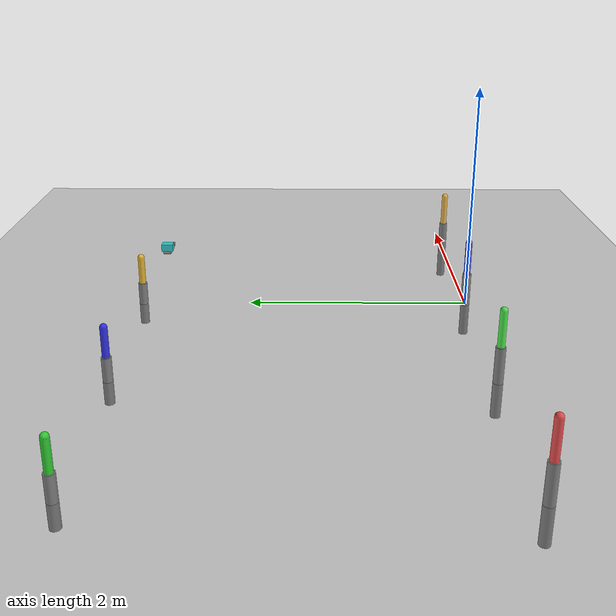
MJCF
<!-- range角度限制演示 + ref角度偏置 -->
<mujoco model="joint_range_ref">
    <compiler angle="radian" autolimits="true"/>
    <option timestep="0.002" gravity="0 0 -9.81"/>

    <visual>
        <global realtime="1"/>
        <quality shadowsize="1024"/>
        <headlight diffuse="1 1 1" specular="0.5 0.5 0.5" active="1"/>
    </visual>

    <asset>
        <texture name="grid" type="2d" builtin="checker" width="512" height="512"
                 rgb1=".15 .15 .15" rgb2=".7 .7 .7"/>
        <material name="grid" texture="grid"/>
    </asset>

    <worldbody>
        <geom name="floor" type="plane" size="20 20 .01" material="grid" condim="3"/>

        <!-- range对比: hinge关节的不同角度限制 -->
        <!-- 无限制 -->
        <body pos="-3 3 0">
            <geom type="cylinder" size="0.04 0.2" rgba=".5 .5 .5 1"/>
            <body pos="0 0 0.2">
                <joint type="hinge" axis="0 1 0" stiffness="1" damping="0.01"/>
                <geom type="capsule" size="0.03 0.25" rgba=".2 .8 .2 1"/>
                <!-- 转动范围指示弧 -->
            </body>
        </body>

        <!-- 限制±30° (约±0.52 rad) -->
        <body pos="-1.5 3 0">
            <geom type="cylinder" size="0.04 0.2" rgba=".5 .5 .5 1"/>
            <body pos="0 0 0.2">
                <joint type="hinge" axis="0 1 0" range="-0.52 0.52" stiffness="1" damping="0.01"/>
                <geom type="capsule" size="0.03 0.25" rgba=".2 .2 .9 1"/>
            </body>
        </body>

        <!-- 限制0~90° (0~1.57 rad) -->
        <body pos="0 3 0">
            <geom type="cylinder" size="0.04 0.2" rgba=".5 .5 .5 1"/>
            <body pos="0 0 0.2">
                <joint type="hinge" axis="0 1 0" range="0 1.57" stiffness="1" damping="0.01" ref="0.785"/>
                <geom type="capsule" size="0.03 0.25" rgba=".9 .7 .2 1"/>
            </body>
        </body>

        <!-- slide的range限制 -->
        <body pos="1.5 3 0">
            <geom type="box" size="0.15 0.04 0.02" rgba=".6 .6 .6 1"/>
            <body pos="-0.1 0 0.05">
                <joint type="slide" axis="1 0 0" range="-0.15 0.15" stiffness="2" damping="0.01"/>
                <geom type="box" size="0.05 0.06 0.04" rgba=".2 .8 .8 1"/>
            </body>
        </body>

        <!-- ref偏置演示: 不同的ref值 -->
        <body pos="-3 0 0">
            <geom type="cylinder" size="0.04 0.3" rgba=".5 .5 .5 1"/>
            <body pos="0 0 0.3">
                <!-- ref=0 (默认)，弹簧把关节保持在竖直位置 -->
                <joint type="hinge" axis="0 1 0" ref="0" stiffness="2" damping="0.01"/>
                <geom type="capsule" size="0.03 0.3" rgba=".9 .3 .3 1"/>
            </body>
        </body>
        <body pos="-1.5 0 0">
            <geom type="cylinder" size="0.04 0.3" rgba=".5 .5 .5 1"/>
            <body pos="0 0 0.3">
                <!-- ref=0.5 rad(约30°)，弹簧把关节推向30°位置 -->
                <joint type="hinge" axis="0 1 0" ref="0.5" stiffness="2" damping="0.01"/>
                <geom type="capsule" size="0.03 0.3" rgba=".3 .9 .3 1"/>
            </body>
        </body>
        <body pos="0 0 0">
            <geom type="cylinder" size="0.04 0.3" rgba=".5 .5 .5 1"/>
            <body pos="0 0 0.3">
                <!-- ref=-0.5 rad，弹簧把关节推向-30°方向 -->
                <joint type="hinge" axis="0 1 0" ref="-0.5" stiffness="2" damping="0.01"/>
                <geom type="capsule" size="0.03 0.3" rgba=".3 .3 .9 1"/>
            </body>
        </body>
        <body pos="1.5 0 0">
            <geom type="cylinder" size="0.04 0.3" rgba=".5 .5 .5 1"/>
            <body pos="0 0 0.3">
                <!-- ref=1.0 rad(约60°)，弹簧把关节推向60°方向 -->
                <joint type="hinge" axis="0 1 0" ref="1.0" stiffness="2" damping="0.01"/>
                <geom type="capsule" size="0.03 0.3" rgba=".9 .7 .3 1"/>
            </body>
        </body>
    </worldbody>
</mujoco>
